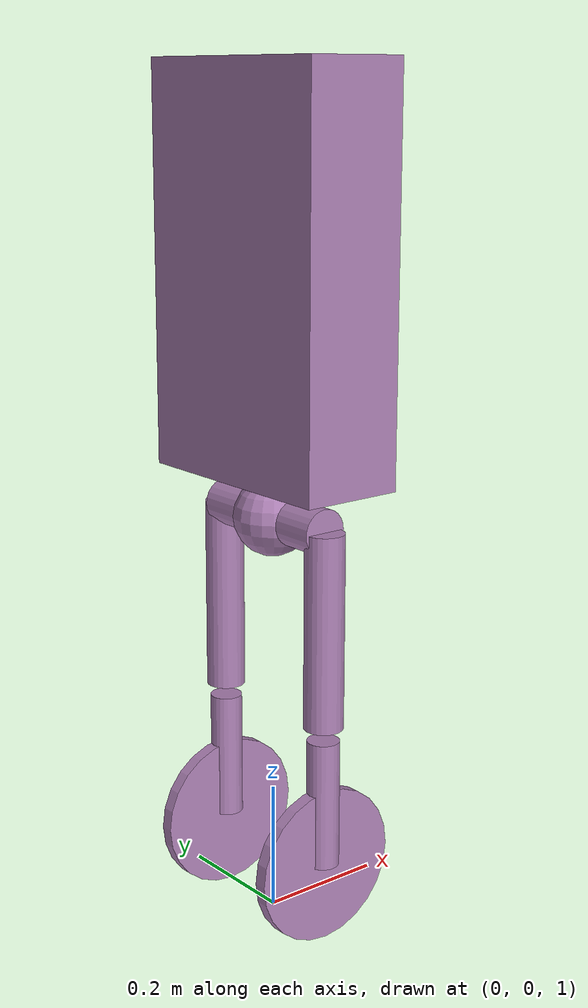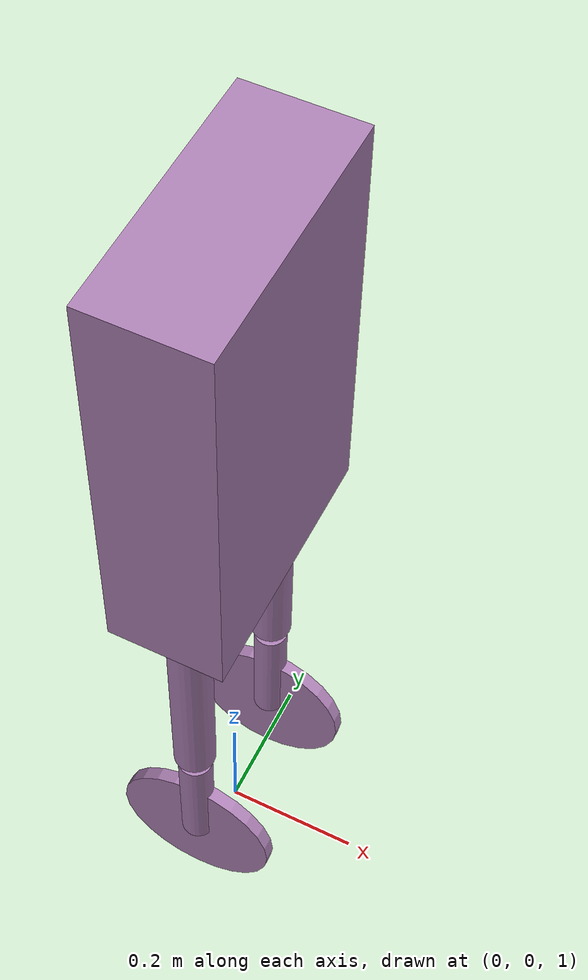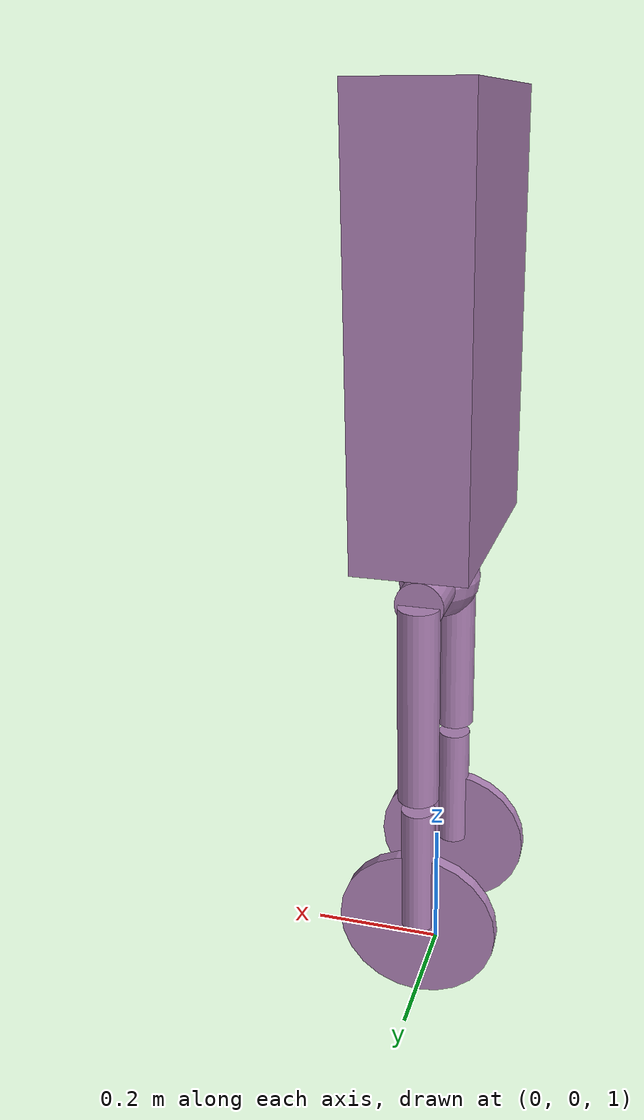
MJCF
<mujoco model="purple_wheeled_balancer">
  <default>
    <geom rgba="0.67 0.5 0.7 1" density="1000"/>
    <joint damping="0.5" armature="0.01" stiffness="0" limited="true"/>
    <motor gear="20"/>
  </default>

  <worldbody>
    <body name="torso" pos="0 0 2">
      <camera name="tracking_cam" mode="trackcom" pos="-6 -6 6" xyaxes="1 -1 0 0 1 1"/>
      <freejoint/>
      <geom name="torso_box" type="box" size="0.08 0.18 0.3"/>

      <geom name="pelvis_sphere" type="sphere" size="0.06" pos="0 0 -0.36"/>
      <geom name="pelvis_cyl_left" type="cylinder" fromto="0 0.05 -0.36  0 0.12 -0.36" size="0.035"/>
      <geom name="pelvis_cyl_right" type="cylinder" fromto="0 -0.05 -0.36  0 -0.12 -0.36" size="0.035"/>

      <body name="left_leg" pos="0 0.12 -0.36">
        <joint name="left_hip" type="hinge" axis="0 1 0" range="-50 50"/>
        <geom name="left_thigh" type="cylinder" fromto="0 0 0  0 0 -0.3" size="0.03"/>
        <body name="left_shin" pos="0 0 -0.32">
          <joint name="left_knee" type="hinge" axis="0 1 0" range="0 120"/>
          <geom name="left_shin_geom" type="cylinder" fromto="0 0 0  0 0 -0.2" size="0.025"/>
          <body name="left_wheel_hub" pos="0 0 -0.2">
            <joint name="left_wheel" type="hinge" axis="0 1 0" limited="false"/>
            <geom name="left_wheel_disc" type="cylinder" size="0.12 0.01" quat="0.7071 0.7071 0 0"
                  friction="1.5 0.01 0.005" rgba="0.67 0.5 0.7 1"/>
            <site name="left_wheel_site" pos="0 0 0"/>
          </body>
        </body>
      </body>

      <body name="right_leg" pos="0 -0.12 -0.36">
        <joint name="right_hip" type="hinge" axis="0 1 0" range="-50 50"/>
        <geom name="right_thigh" type="cylinder" fromto="0 0 0  0 0 -0.3" size="0.03"/>
        <body name="right_shin" pos="0 0 -0.32">
          <joint name="right_knee" type="hinge" axis="0 1 0" range="0 120"/>
          <geom name="right_shin_geom" type="cylinder" fromto="0 0 0  0 0 -0.2" size="0.025"/>
          <body name="right_wheel_hub" pos="0 0 -0.2">
            <joint name="right_wheel" type="hinge" axis="0 1 0" limited="false"/>
            <geom name="right_wheel_disc" type="cylinder" size="0.12 0.01" quat="0.7071 0.7071 0 0"
                  friction="1.5 0.01 0.005" rgba="0.67 0.5 0.7 1"/>
            <site name="right_wheel_site" pos="0 0 0"/>
          </body>
        </body>
      </body>
    </body>
  </worldbody>

  <actuator>

    <motor joint="left_hip" gear="100"/>
    <motor joint="left_knee" gear="100"/>
    <motor joint="right_hip" gear="100"/>
    <motor joint="right_knee" gear="100"/>

    <velocity joint="left_wheel" gear="15"/>
    <velocity joint="right_wheel" gear="15"/>
  </actuator>
</mujoco>
